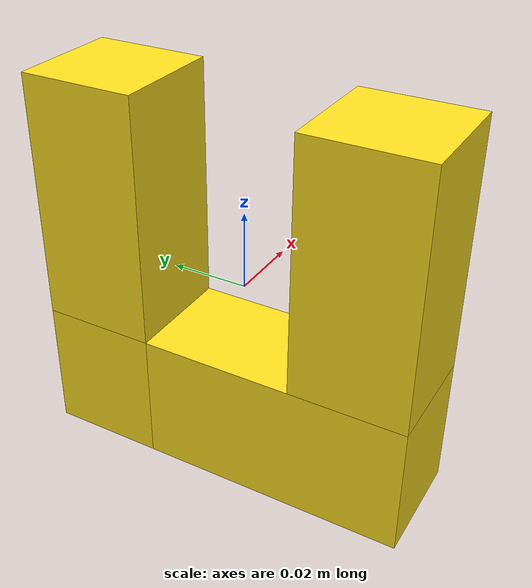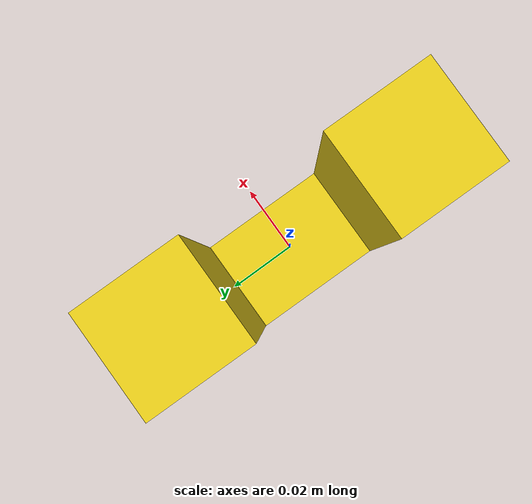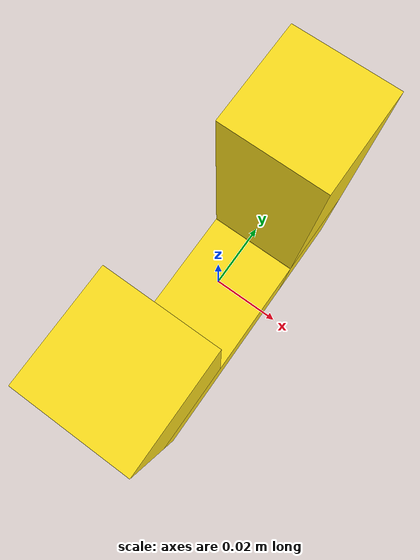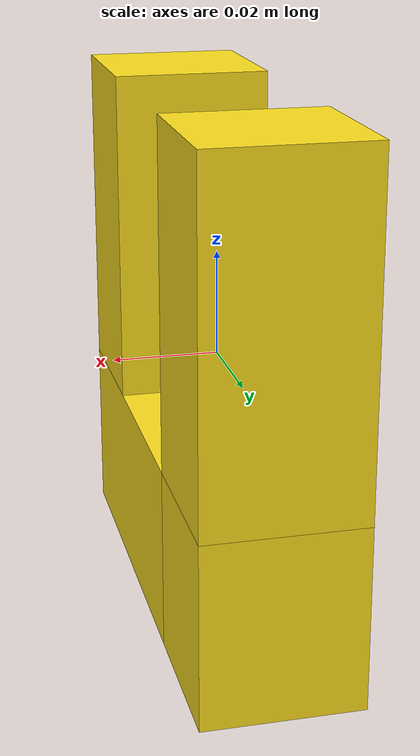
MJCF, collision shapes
<?xml version='1.0' encoding='utf-8'?>
<mujoco model="obj2">
  <asset>
    <mesh name="obj2" file="obj2.obj" scale="0.001 0.001 0.001" />
    <material name="mat2" rgba="1 0.88235 0.11373 1" />
    <mesh name="obj1_p0" file="obj2_part_0.obj" scale="0.001 0.001 0.001" />
    <mesh name="obj1_p1" file="obj2_part_1.obj" scale="0.001 0.001 0.001" />
    <mesh name="obj1_p2" file="obj2_part_2.obj" scale="0.001 0.001 0.001" />
    <mesh name="obj1_p3" file="obj2_part_3.obj" scale="0.001 0.001 0.001" />
  </asset>
  <worldbody>
    <body>
      <body name="object">
        <inertial pos="0 0 0" mass="0.1" diaginertia="0.0001 0.0001 0.0001" />
        <geom name="visual" mesh="obj2" type="mesh" group="1" contype="0" conaffinity="0" material="mat2" />
        <geom name="col_0" mesh="obj1_p0" type="mesh" group="0" contype="1" conaffinity="1" friction="0.95 0.3 0.1" solimp="0.9 0.95 0.001" solref="0.02 1" condim="4" material="mat2" />
        <geom name="col_1" mesh="obj1_p1" type="mesh" group="0" contype="1" conaffinity="1" friction="0.95 0.3 0.1" solimp="0.9 0.95 0.001" solref="0.02 1" condim="4" material="mat2" />
        <geom name="col_2" mesh="obj1_p2" type="mesh" group="0" contype="1" conaffinity="1" friction="0.95 0.3 0.1" solimp="0.9 0.95 0.001" solref="0.02 1" condim="4" material="mat2" />
        <geom name="col_3" mesh="obj1_p3" type="mesh" group="0" contype="1" conaffinity="1" friction="0.95 0.3 0.1" solimp="0.9 0.95 0.001" solref="0.02 1" condim="4" material="mat2" />
      </body>
      <site name="bottom_site" pos="0 0 -0.025" size="0.005" rgba="0 0 0 0" />
      <site name="top_site" pos="0 0 0.025" size="0.005" rgba="0 0 0 0" />
      <site name="horizontal_radius_site" pos="0.03 0.03 0" size="0.005" rgba="0 0 0 0" />
    </body>
  </worldbody>
</mujoco>
